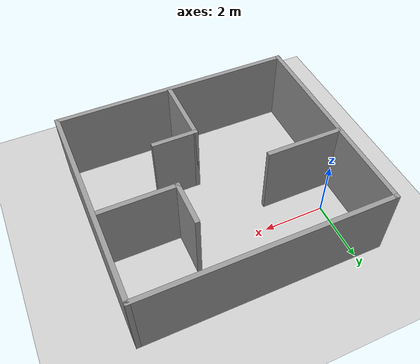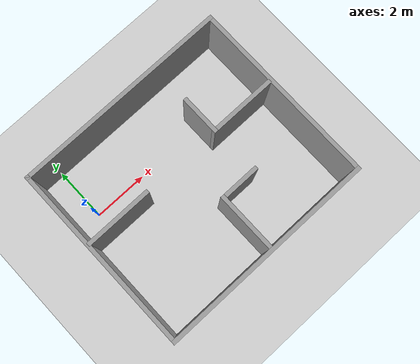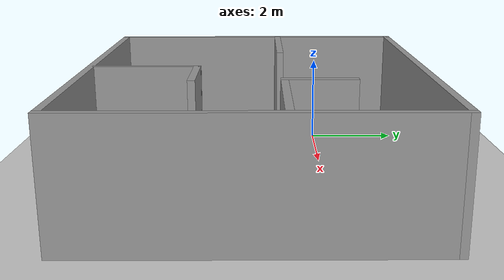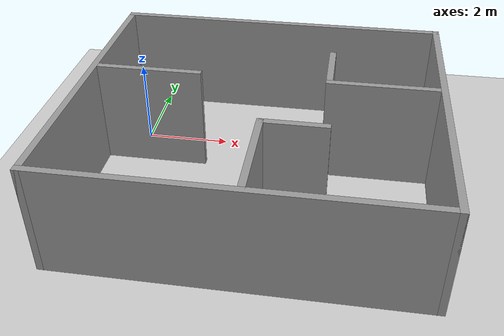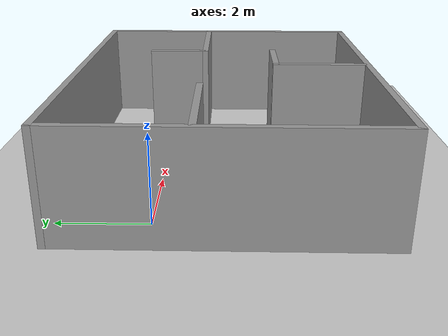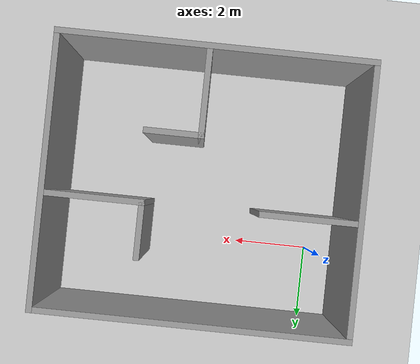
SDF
<sdf version="1.7">
 <world name="default">
  <light name="sun" type="directional">
   <pose>0 0 10 0 -0 0</pose>
   <diffuse>0.8 0.8 0.8 1</diffuse>
   <specular>0.2 0.2 0.2 1</specular>
   <attenuation>
    <range>1000</range>
    <constant>0.9</constant>
    <linear>0.01</linear>
    <quadratic>0.001</quadratic>
   </attenuation>
   <direction>-0.5 0.1 -0.9</direction>
   <spot><inner_angle>0</inner_angle><outer_angle>0</outer_angle><falloff>0</falloff></spot>
  </light>
  <model name="ground_plane">
   <static>1</static>
   <link name="link">
    <collision name="collision">
     <geometry><plane><normal>0 0 1</normal><size>100 100</size></plane></geometry>
     <surface><friction><ode><mu>100</mu><mu2>50</mu2></ode></friction></surface>
    </collision>
    <visual name="visual">
     <cast_shadows>0</cast_shadows>
     <geometry><plane><normal>0 0 1</normal><size>100 100</size></plane></geometry>
     <material>
      <script><uri>file://media/materials/scripts/gazebo.material</uri><name>Gazebo/Grey</name></script>
     </material>
    </visual>
   </link>
  </model>
  <gravity>0 0 -9.8</gravity>
  <magnetic_field>6e-06 2.3e-05 -4.2e-05</magnetic_field>
  <atmosphere type="adiabatic"/>
  <physics type="ode">
   <max_step_size>0.001</max_step_size>
   <real_time_factor>1</real_time_factor>
   <real_time_update_rate>1000</real_time_update_rate>
  </physics>
  <scene><ambient>0.4 0.4 0.4 1</ambient><background>0.7 0.7 0.7 1</background><shadows>1</shadows></scene>
  <audio><device>default</device></audio>
  <spherical_coordinates>
   <surface_model>EARTH_WGS84</surface_model>
   <latitude_deg>0</latitude_deg>
   <longitude_deg>0</longitude_deg>
   <elevation>0</elevation>
   <heading_deg>0</heading_deg>
  </spherical_coordinates>
  <model name="closed_walls">
   <pose>3.095 -1.455 0 0 -0 0</pose>
   <link name="Wall_0">
    <collision name="Wall_0_Collision">
     <geometry><box><size>8 0.15 2.5</size></box></geometry>
     <pose>0 0 1.25 0 -0 0</pose>
    </collision>
    <visual name="Wall_0_Visual">
     <pose>0 0 1.25 0 -0 0</pose>
     <geometry><box><size>8 0.15 2.5</size></box></geometry>
     <material>
      <script><uri>file://media/materials/scripts/gazebo.material</uri><name>Gazebo/Grey</name></script>
      <ambient>1 1 1 1</ambient>
     </material>
     <meta><layer>0</layer></meta>
    </visual>
    <pose>0 -3.425 0 0 -0 0</pose>
   </link>
   <link name="Wall_1">
    <collision name="Wall_1_Collision">
     <geometry><box><size>7 0.15 2.5</size></box></geometry>
     <pose>0 0 1.25 0 -0 0</pose>
    </collision>
    <visual name="Wall_1_Visual">
     <pose>0 0 1.25 0 -0 0</pose>
     <geometry><box><size>7 0.15 2.5</size></box></geometry>
     <material>
      <script><uri>file://media/materials/scripts/gazebo.material</uri><name>Gazebo/Grey</name></script>
      <ambient>1 1 1 1</ambient>
     </material>
     <meta><layer>0</layer></meta>
    </visual>
    <pose>3.925 -0 0 0 -0 1.5708</pose>
   </link>
   <link name="Wall_11">
    <collision name="Wall_11_Collision">
     <geometry><box><size>2.5 0.15 2.5</size></box></geometry>
     <pose>0 0 1.25 0 -0 0</pose>
    </collision>
    <visual name="Wall_11_Visual">
     <pose>0 0 1.25 0 -0 0</pose>
     <geometry><box><size>2.5 0.15 2.5</size></box></geometry>
     <material>
      <script><uri>file://media/materials/scripts/gazebo.material</uri><name>Gazebo/Grey</name></script>
      <ambient>1 1 1 1</ambient>
     </material>
     <meta><layer>0</layer></meta>
    </visual>
    <pose>2.62718 0.545596 0 0 -0 0</pose>
   </link>
   <link name="Wall_13">
    <collision name="Wall_13_Collision">
     <geometry><box><size>1.5 0.15 2.5</size></box></geometry>
     <pose>0 0 1.25 0 -0 0</pose>
    </collision>
    <visual name="Wall_13_Visual">
     <pose>0 0 1.25 0 -0 0</pose>
     <geometry><box><size>1.5 0.15 2.5</size></box></geometry>
     <material>
      <script><uri>file://media/materials/scripts/gazebo.material</uri><name>Gazebo/Grey</name></script>
      <ambient>1 1 1 1</ambient>
     </material>
     <meta><layer>0</layer></meta>
    </visual>
    <pose>1.45218 1.2206 0 0 -0 1.5708</pose>
   </link>
   <link name="Wall_15">
    <collision name="Wall_15_Collision">
     <geometry><box><size>1.5 0.15 2.5</size></box></geometry>
     <pose>0 0 1.25 0 -0 0</pose>
    </collision>
    <visual name="Wall_15_Visual">
     <pose>0 0 1.25 0 -0 0</pose>
     <geometry><box><size>1.5 0.15 2.5</size></box></geometry>
     <material>
      <script><uri>file://media/materials/scripts/gazebo.material</uri><name>Gazebo/Grey</name></script>
      <ambient>1 1 1 1</ambient>
     </material>
     <meta><layer>0</layer></meta>
    </visual>
    <pose>0.849644 -1.21912 0 0 -0 0</pose>
   </link>
   <link name="Wall_2">
    <collision name="Wall_2_Collision">
     <geometry><box><size>8 0.15 2.5</size></box></geometry>
     <pose>0 0 1.25 0 -0 0</pose>
    </collision>
    <visual name="Wall_2_Visual">
     <pose>0 0 1.25 0 -0 0</pose>
     <geometry><box><size>8 0.15 2.5</size></box></geometry>
     <material>
      <script><uri>file://media/materials/scripts/gazebo.material</uri><name>Gazebo/Grey</name></script>
      <ambient>1 1 1 1</ambient>
     </material>
     <meta><layer>0</layer></meta>
    </visual>
    <pose>0 3.425 0 0 -0 3.14159</pose>
   </link>
   <link name="Wall_3">
    <collision name="Wall_3_Collision">
     <geometry><box><size>7 0.15 2.5</size></box></geometry>
     <pose>0 0 1.25 0 -0 0</pose>
    </collision>
    <visual name="Wall_3_Visual">
     <pose>0 0 1.25 0 -0 0</pose>
     <geometry><box><size>7 0.15 2.5</size></box></geometry>
     <material>
      <script><uri>file://media/materials/scripts/gazebo.material</uri><name>Gazebo/Grey</name></script>
      <ambient>1 1 1 1</ambient>
     </material>
     <meta><layer>0</layer></meta>
    </visual>
    <pose>-3.925 -0 0 0 -0 -1.5708</pose>
   </link>
   <link name="Wall_5">
    <collision name="Wall_5_Collision">
     <geometry><box><size>2.5 0.15 2.5</size></box></geometry>
     <pose>0 0 1.25 0 -0 0</pose>
    </collision>
    <visual name="Wall_5_Visual">
     <pose>0 0 1.25 0 -0 0</pose>
     <geometry><box><size>2.5 0.15 2.5</size></box></geometry>
     <material>
      <script><uri>file://media/materials/scripts/gazebo.material</uri><name>Gazebo/Grey</name></script>
      <ambient>1 1 1 1</ambient>
     </material>
     <meta><layer>0</layer></meta>
    </visual>
    <pose>-2.67332 0.543906 0 0 -0 3.14159</pose>
   </link>
   <link name="Wall_7">
    <collision name="Wall_7_Collision">
     <geometry><box><size>2.25 0.15 2.5</size></box></geometry>
     <pose>0 0 1.25 0 -0 0</pose>
    </collision>
    <visual name="Wall_7_Visual">
     <pose>0 0 1.25 0 -0 0</pose>
     <geometry><box><size>2.25 0.15 2.5</size></box></geometry>
     <material>
      <script><uri>file://media/materials/scripts/gazebo.material</uri><name>Gazebo/Grey</name></script>
      <ambient>1 1 1 1</ambient>
     </material>
     <meta><layer>0</layer></meta>
    </visual>
    <pose>0.174644 -2.26912 0 0 -0 1.5708</pose>
   </link>
   <static>1</static>
  </model>
 </world>
</sdf>
